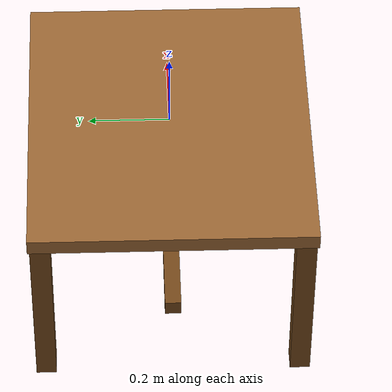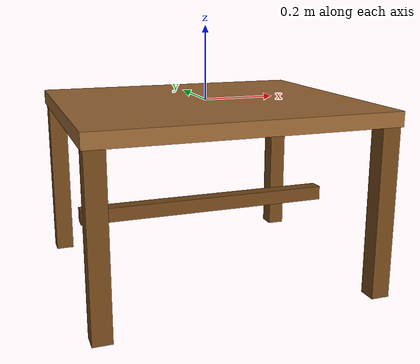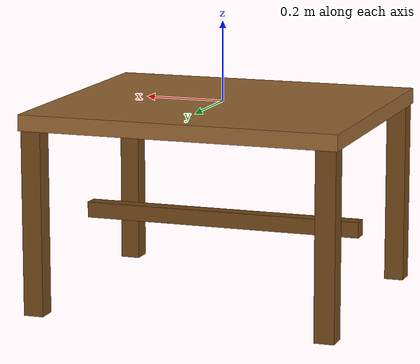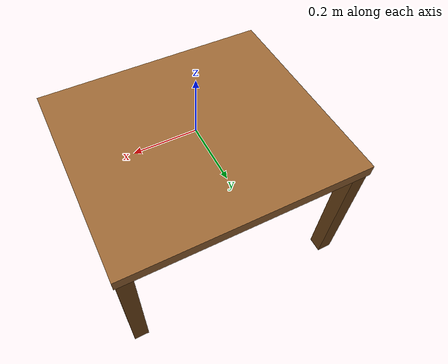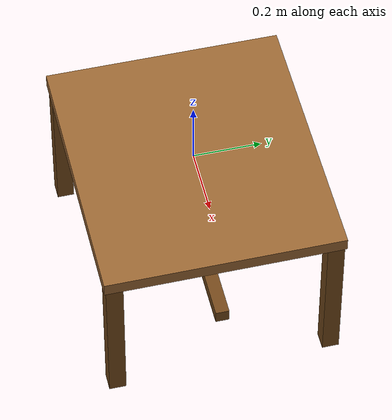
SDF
<?xml version="1.0" ?>
<sdf version="1.6">
  <model name="robot_platform">
    <static>true</static>
    <link name="link">

      <!-- Table top -->
      <collision name="top_col">
        <pose>0 0 -0.02 0 0 0</pose>
        <geometry><box><size>0.80 0.70 0.04</size></box></geometry>
      </collision>
      <visual name="top_vis">
        <pose>0 0 -0.02 0 0 0</pose>
        <geometry><box><size>0.80 0.70 0.04</size></box></geometry>
        <material>
          <ambient>0.60 0.40 0.20 1</ambient>
          <diffuse>0.60 0.40 0.20 1</diffuse>
          <specular>0.25 0.25 0.25 1</specular>
        </material>
      </visual>

      <!-- Front-left leg -->
      <collision name="leg_fl_col"><pose> 0.37  0.32 -0.27 0 0 0</pose><geometry><box><size>0.05 0.05 0.46</size></box></geometry></collision>
      <visual    name="leg_fl_vis"><pose> 0.37  0.32 -0.27 0 0 0</pose><geometry><box><size>0.05 0.05 0.46</size></box></geometry>
        <material><ambient>0.45 0.28 0.10 1</ambient><diffuse>0.45 0.28 0.10 1</diffuse></material></visual>

      <!-- Front-right leg -->
      <collision name="leg_fr_col"><pose> 0.37 -0.32 -0.27 0 0 0</pose><geometry><box><size>0.05 0.05 0.46</size></box></geometry></collision>
      <visual    name="leg_fr_vis"><pose> 0.37 -0.32 -0.27 0 0 0</pose><geometry><box><size>0.05 0.05 0.46</size></box></geometry>
        <material><ambient>0.45 0.28 0.10 1</ambient><diffuse>0.45 0.28 0.10 1</diffuse></material></visual>

      <!-- Back-left leg -->
      <collision name="leg_bl_col"><pose>-0.37  0.32 -0.27 0 0 0</pose><geometry><box><size>0.05 0.05 0.46</size></box></geometry></collision>
      <visual    name="leg_bl_vis"><pose>-0.37  0.32 -0.27 0 0 0</pose><geometry><box><size>0.05 0.05 0.46</size></box></geometry>
        <material><ambient>0.45 0.28 0.10 1</ambient><diffuse>0.45 0.28 0.10 1</diffuse></material></visual>

      <!-- Back-right leg -->
      <collision name="leg_br_col"><pose>-0.37 -0.32 -0.27 0 0 0</pose><geometry><box><size>0.05 0.05 0.46</size></box></geometry></collision>
      <visual    name="leg_br_vis"><pose>-0.37 -0.32 -0.27 0 0 0</pose><geometry><box><size>0.05 0.05 0.46</size></box></geometry>
        <material><ambient>0.45 0.28 0.10 1</ambient><diffuse>0.45 0.28 0.10 1</diffuse></material></visual>

      <!-- Cross-brace (structural beam under table-top) -->
      <collision name="brace_col"><pose>0 0 -0.30 0 0 0</pose><geometry><box><size>0.72 0.04 0.04</size></box></geometry></collision>
      <visual    name="brace_vis"><pose>0 0 -0.30 0 0 0</pose><geometry><box><size>0.72 0.04 0.04</size></box></geometry>
        <material><ambient>0.45 0.28 0.10 1</ambient><diffuse>0.45 0.28 0.10 1</diffuse></material></visual>

    </link>
  </model>
</sdf>
